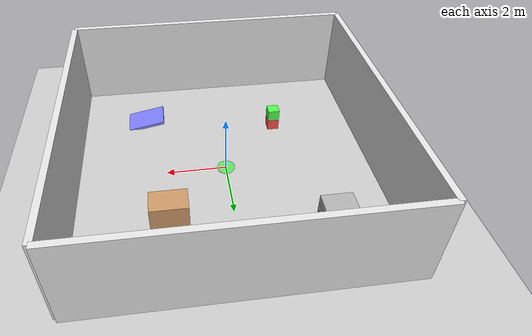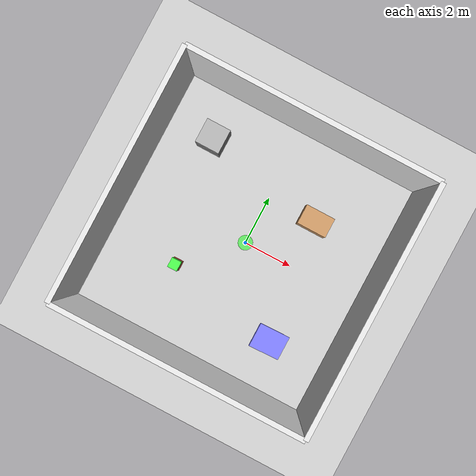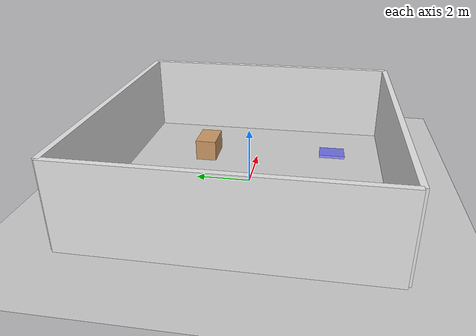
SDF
<?xml version="1.0" ?>
<sdf version="1.7">
  <world name="complex_humanoid_world">
    <!-- Include default ground plane -->
    <include>
      <uri>model://ground_plane</uri>
    </include>

    <!-- Include default sky -->
    <include>
      <uri>model://sun</uri>
    </include>

    <!-- Physics Engine Configuration -->
    <physics type="ode">
      <max_step_size>0.001</max_step_size>
      <real_time_factor>1.0</real_time_factor>
      <real_time_update_rate>1000.0</real_time_update_rate>
      <gravity>0 0 -9.8</gravity>
      <ode>
        <solver>
          <type>quick</type>
          <iters>20</iters>
          <sor>1.3</sor>
        </solver>
        <constraints>
          <cfm>0.000001</cfm>
          <erp>0.2</erp>
          <contact_max_correcting_vel>100.0</contact_max_correcting_vel>
          <contact_surface_layer>0.001</contact_surface_layer>
        </constraints>
      </ode>
    </physics>

    <!-- Room with walls -->
    <model name="wall_1">
      <pose>-5 0 1.5 0 0 0</pose>
      <static>true</static>
      <link name="link">
        <collision name="collision">
          <geometry>
            <box>
              <size>0.2 10 3</size>
            </box>
          </geometry>
        </collision>
        <visual name="visual">
          <geometry>
            <box>
              <size>0.2 10 3</size>
            </box>
          </geometry>
          <material>
            <ambient>0.8 0.8 0.8 1</ambient>
            <diffuse>0.9 0.9 0.9 1</diffuse>
          </material>
        </visual>
      </link>
    </model>

    <model name="wall_2">
      <pose>5 0 1.5 0 0 0</pose>
      <static>true</static>
      <link name="link">
        <collision name="collision">
          <geometry>
            <box>
              <size>0.2 10 3</size>
            </box>
          </geometry>
        </collision>
        <visual name="visual">
          <geometry>
            <box>
              <size>0.2 10 3</size>
            </box>
          </geometry>
          <material>
            <ambient>0.8 0.8 0.8 1</ambient>
            <diffuse>0.9 0.9 0.9 1</diffuse>
          </material>
        </visual>
      </link>
    </model>

    <model name="wall_3">
      <pose>0 -5 1.5 0 0 1.5707</pose>
      <static>true</static>
      <link name="link">
        <collision name="collision">
          <geometry>
            <box>
              <size>0.2 10 3</size>
            </box>
          </geometry>
        </collision>
        <visual name="visual">
          <geometry>
            <box>
              <size>0.2 10 3</size>
            </box>
          </geometry>
          <material>
            <ambient>0.8 0.8 0.8 1</ambient>
            <diffuse>0.9 0.9 0.9 1</diffuse>
          </material>
        </visual>
      </link>
    </model>

    <model name="wall_4">
      <pose>0 5 1.5 0 0 1.5707</pose>
      <static>true</static>
      <link name="link">
        <collision name="collision">
          <geometry>
            <box>
              <size>0.2 10 3</size>
            </box>
          </geometry>
        </collision>
        <visual name="visual">
          <geometry>
            <box>
              <size>0.2 10 3</size>
            </box>
          </geometry>
          <material>
            <ambient>0.8 0.8 0.8 1</ambient>
            <diffuse>0.9 0.9 0.9 1</diffuse>
          </material>
        </visual>
      </link>
    </model>

    <!-- Obstacles and Interactive Elements -->
    <model name="table">
      <pose>2 2 0.4 0 0 0</pose>
      <link name="base">
        <collision name="collision_base">
          <geometry>
            <box>
              <size>1.2 0.8 0.8</size>
            </box>
          </geometry>
        </collision>
        <visual name="visual_base">
          <geometry>
            <box>
              <size>1.2 0.8 0.8</size>
            </box>
          </geometry>
          <material>
            <ambient>0.6 0.4 0.2 1</ambient>
            <diffuse>0.8 0.6 0.4 1</diffuse>
          </material>
        </visual>
        <inertial>
          <mass>10.0</mass>
          <inertia>
            <ixx>1.06667</ixx>
            <ixy>0</ixy>
            <ixz>0</ixz>
            <iyy>1.6</iyy>
            <iyz>0</iyz>
            <izz>1.86667</izz>
          </inertia>
        </inertial>
      </link>
    </model>

    <model name="box_stack">
      <pose>-2 -2 0.25 0 0 0</pose>
      <link name="box1">
        <collision name="collision1">
          <geometry>
            <box>
              <size>0.4 0.4 0.4</size>
            </box>
          </geometry>
        </collision>
        <visual name="visual1">
          <geometry>
            <box>
              <size>0.4 0.4 0.4</size>
            </box>
          </geometry>
          <material>
            <ambient>0.8 0.2 0.2 1</ambient>
            <diffuse>1.0 0.3 0.3 1</diffuse>
          </material>
        </visual>
        <inertial>
          <mass>2.0</mass>
          <inertia>
            <ixx>0.02667</ixx>
            <ixy>0</ixy>
            <ixz>0</ixz>
            <iyy>0.02667</iyy>
            <iyz>0</iyz>
            <izz>0.02667</izz>
          </inertia>
        </inertial>
      </link>
      <link name="box2">
        <pose>0 0 0.4 0 0 0</pose>
        <collision name="collision2">
          <geometry>
            <box>
              <size>0.4 0.4 0.4</size>
            </box>
          </geometry>
        </collision>
        <visual name="visual2">
          <geometry>
            <box>
              <size>0.4 0.4 0.4</size>
            </box>
          </geometry>
          <material>
            <ambient>0.2 0.8 0.2 1</ambient>
            <diffuse>0.3 1.0 0.3 1</diffuse>
          </material>
        </visual>
        <inertial>
          <mass>2.0</mass>
          <inertia>
            <ixx>0.02667</ixx>
            <ixy>0</ixy>
            <ixz>0</ixz>
            <iyy>0.02667</iyy>
            <iyz>0</iyz>
            <izz>0.02667</izz>
          </inertia>
        </inertial>
      </link>
      <joint name="stack_joint" type="fixed">
        <parent>box1</parent>
        <child>box2</child>
        <pose>0 0 0.4 0 0 0</pose>
      </joint>
    </model>

    <!-- Stairs for humanoid navigation test -->
    <model name="stairs">
      <pose>-3 3 0.15 0 0 0</pose>
      <static>true</static>
      <link name="step1">
        <collision name="collision1">
          <geometry>
            <box>
              <size>1 1 0.3</size>
            </box>
          </geometry>
        </collision>
        <visual name="visual1">
          <geometry>
            <box>
              <size>1 1 0.3</size>
            </box>
          </geometry>
          <material>
            <ambient>0.5 0.5 0.5 1</ambient>
            <diffuse>0.7 0.7 0.7 1</diffuse>
          </material>
        </visual>
      </link>
      <link name="step2">
        <pose>0 0 0.3 0 0 0</pose>
        <collision name="collision2">
          <geometry>
            <box>
              <size>1 1 0.3</size>
            </box>
          </geometry>
        </collision>
        <visual name="visual2">
          <geometry>
            <box>
              <size>1 1 0.3</size>
            </box>
          </geometry>
          <material>
            <ambient>0.5 0.5 0.5 1</ambient>
            <diffuse>0.7 0.7 0.7 1</diffuse>
          </material>
        </visual>
      </link>
      <link name="step3">
        <pose>0 0 0.6 0 0 0</pose>
        <collision name="collision3">
          <geometry>
            <box>
              <size>1 1 0.3</size>
            </box>
          </geometry>
        </collision>
        <visual name="visual3">
          <geometry>
            <box>
              <size>1 1 0.3</size>
            </box>
          </geometry>
          <material>
            <ambient>0.5 0.5 0.5 1</ambient>
            <diffuse>0.7 0.7 0.7 1</diffuse>
          </material>
        </visual>
      </link>
      <joint name="step2_joint" type="fixed">
        <parent>step1</parent>
        <child>step2</child>
        <pose>0 0 0.3 0 0 0</pose>
      </joint>
      <joint name="step3_joint" type="fixed">
        <parent>step2</parent>
        <child>step3</child>
        <pose>0 0 0.3 0 0 0</pose>
      </joint>
    </model>

    <!-- Ramp for walking test -->
    <model name="ramp_test">
      <pose>3 -3 0 0 0.2 0</pose>
      <static>true</static>
      <link name="link">
        <collision name="collision">
          <geometry>
            <box>
              <size>2 1 0.1</size>
            </box>
          </geometry>
          <surface>
            <friction>
              <ode>
                <mu>1.0</mu>
                <mu2>1.0</mu2>
              </ode>
            </friction>
          </surface>
        </collision>
        <visual name="visual">
          <geometry>
            <box>
              <size>2 1 0.1</size>
            </box>
          </geometry>
          <material>
            <ambient>0.3 0.3 0.8 1</ambient>
            <diffuse>0.5 0.5 1 1</diffuse>
          </material>
        </visual>
      </link>
    </model>

    <!-- Marker for robot starting position -->
    <model name="start_position">
      <pose>0 0 0.02 0 0 0</pose>
      <static>true</static>
      <link name="link">
        <collision name="collision">
          <geometry>
            <cylinder>
              <radius>0.3</radius>
              <length>0.04</length>
            </cylinder>
          </geometry>
        </collision>
        <visual name="visual">
          <geometry>
            <cylinder>
              <radius>0.3</radius>
              <length>0.04</length>
            </cylinder>
          </geometry>
          <material>
            <ambient>0 1 0 0.5</ambient>
            <diffuse>0 1 0 0.5</diffuse>
          </material>
        </visual>
      </link>
    </model>

  </world>
</sdf>
